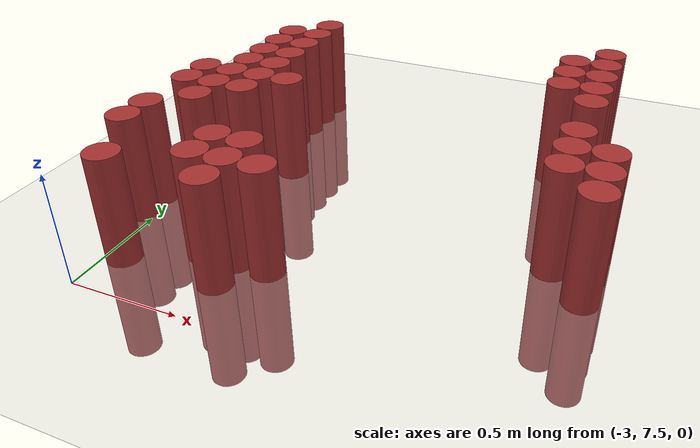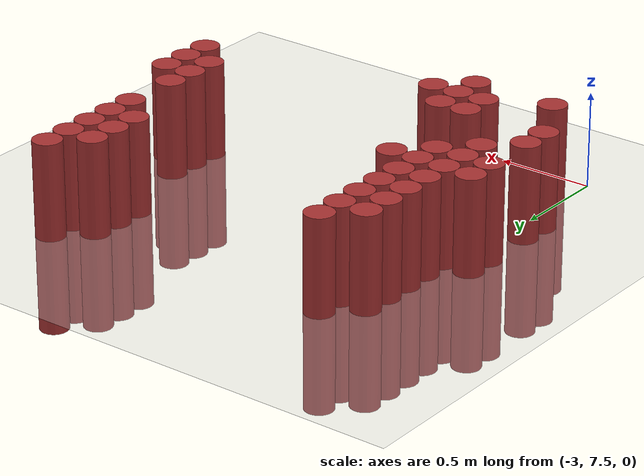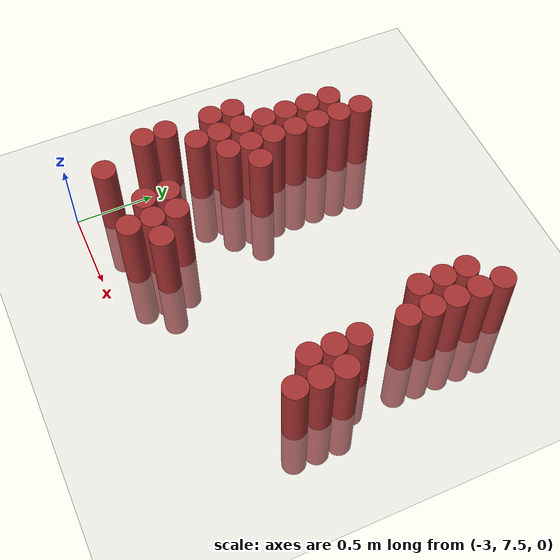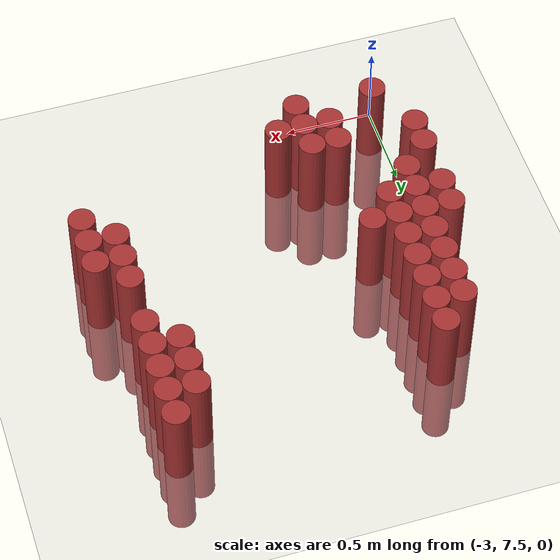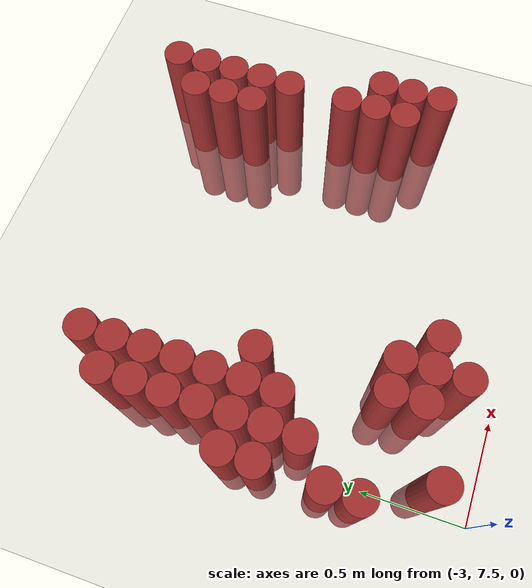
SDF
<sdf version="1.6">
 <world name="default">
  <model name="ground_plane">
   <static>1</static>
   <link name="link">
    <collision name="collision">
     <geometry><plane><normal>0 0 1</normal><size>100 100</size></plane></geometry>
     <surface><friction><ode><mu>100</mu><mu2>50</mu2></ode></friction></surface>
    </collision>
    <visual name="visual">
     <cast_shadows>0</cast_shadows>
     <geometry><plane><normal>0 0 1</normal><size>100 100</size></plane></geometry>
     <material>
      <script><uri>file://media/materials/scripts/gazebo.material</uri><name>Gazebo/Grey</name></script>
     </material>
    </visual>
   </link>
  </model>
  <model name="unit_cylinder_200">
   <static>1</static>
   <pose>-3.075000 8.025000 0.000000 0.000000 0.000000 0.000000</pose>
   <link name="link">
    <inertial>
     <mass>1</mass>
     <inertia><ixx>0.145833</ixx><ixy>0</ixy><ixz>0</ixz><iyy>0.145833</iyy><iyz>0</iyz><izz>0.125</izz></inertia>
    </inertial>
    <collision name="collision">
     <geometry><cylinder><radius>0.075000</radius><length>1</length></cylinder></geometry>
    </collision>
    <visual name="visual">
     <geometry><cylinder><radius>0.075000</radius><length>1</length></cylinder></geometry>
     <material>
      <ambient>0.648000 0.192000 0.192000 1</ambient>
      <diffuse>0.648000 0.192000 0.192000 1</diffuse>
     </material>
     <material>
      <script><name>Gazebo/Grey</name><uri>file://media/materials/scripts/gazebo.material</uri></script>
     </material>
    </visual>
    <sensor name="sensor_contact" type="contact"><contact><collision>collision</collision></contact></sensor>
   </link>
   <plugin filename="gz-sim-touchplugin-system" name="gz::sim::systems::TouchPlugin">
    <target>robot</target>
    <namespace>robot</namespace>
    <time>0.001</time>
    <enabled>true</enabled>
   </plugin>
  </model>
  <model name="unit_cylinder_201">
   <static>1</static>
   <pose>-3.075000 8.175000 0.000000 0.000000 0.000000 0.000000</pose>
   <link name="link">
    <inertial>
     <mass>1</mass>
     <inertia><ixx>0.145833</ixx><ixy>0</ixy><ixz>0</ixz><iyy>0.145833</iyy><iyz>0</iyz><izz>0.125</izz></inertia>
    </inertial>
    <collision name="collision">
     <geometry><cylinder><radius>0.075000</radius><length>1</length></cylinder></geometry>
    </collision>
    <visual name="visual">
     <geometry><cylinder><radius>0.075000</radius><length>1</length></cylinder></geometry>
     <material>
      <ambient>0.648000 0.192000 0.192000 1</ambient>
      <diffuse>0.648000 0.192000 0.192000 1</diffuse>
     </material>
     <material>
      <script><name>Gazebo/Grey</name><uri>file://media/materials/scripts/gazebo.material</uri></script>
     </material>
    </visual>
    <sensor name="sensor_contact" type="contact"><contact><collision>collision</collision></contact></sensor>
   </link>
   <plugin filename="gz-sim-touchplugin-system" name="gz::sim::systems::TouchPlugin">
    <target>robot</target>
    <namespace>robot</namespace>
    <time>0.001</time>
    <enabled>true</enabled>
   </plugin>
  </model>
  <model name="unit_cylinder_202">
   <static>1</static>
   <pose>-3.075000 8.475000 0.000000 0.000000 0.000000 0.000000</pose>
   <link name="link">
    <inertial>
     <mass>1</mass>
     <inertia><ixx>0.145833</ixx><ixy>0</ixy><ixz>0</ixz><iyy>0.145833</iyy><iyz>0</iyz><izz>0.125</izz></inertia>
    </inertial>
    <collision name="collision">
     <geometry><cylinder><radius>0.075000</radius><length>1</length></cylinder></geometry>
    </collision>
    <visual name="visual">
     <geometry><cylinder><radius>0.075000</radius><length>1</length></cylinder></geometry>
     <material>
      <ambient>0.648000 0.192000 0.192000 1</ambient>
      <diffuse>0.648000 0.192000 0.192000 1</diffuse>
     </material>
     <material>
      <script><name>Gazebo/Grey</name><uri>file://media/materials/scripts/gazebo.material</uri></script>
     </material>
    </visual>
    <sensor name="sensor_contact" type="contact"><contact><collision>collision</collision></contact></sensor>
   </link>
   <plugin filename="gz-sim-touchplugin-system" name="gz::sim::systems::TouchPlugin">
    <target>robot</target>
    <namespace>robot</namespace>
    <time>0.001</time>
    <enabled>true</enabled>
   </plugin>
  </model>
  <model name="unit_cylinder_203">
   <static>1</static>
   <pose>-3.075000 8.625000 0.000000 0.000000 0.000000 0.000000</pose>
   <link name="link">
    <inertial>
     <mass>1</mass>
     <inertia><ixx>0.145833</ixx><ixy>0</ixy><ixz>0</ixz><iyy>0.145833</iyy><iyz>0</iyz><izz>0.125</izz></inertia>
    </inertial>
    <collision name="collision">
     <geometry><cylinder><radius>0.075000</radius><length>1</length></cylinder></geometry>
    </collision>
    <visual name="visual">
     <geometry><cylinder><radius>0.075000</radius><length>1</length></cylinder></geometry>
     <material>
      <ambient>0.648000 0.192000 0.192000 1</ambient>
      <diffuse>0.648000 0.192000 0.192000 1</diffuse>
     </material>
     <material>
      <script><name>Gazebo/Grey</name><uri>file://media/materials/scripts/gazebo.material</uri></script>
     </material>
    </visual>
    <sensor name="sensor_contact" type="contact"><contact><collision>collision</collision></contact></sensor>
   </link>
   <plugin filename="gz-sim-touchplugin-system" name="gz::sim::systems::TouchPlugin">
    <target>robot</target>
    <namespace>robot</namespace>
    <time>0.001</time>
    <enabled>true</enabled>
   </plugin>
  </model>
  <model name="unit_cylinder_208">
   <static>1</static>
   <pose>-2.925000 7.725000 0.000000 0.000000 0.000000 0.000000</pose>
   <link name="link">
    <inertial>
     <mass>1</mass>
     <inertia><ixx>0.145833</ixx><ixy>0</ixy><ixz>0</ixz><iyy>0.145833</iyy><iyz>0</iyz><izz>0.125</izz></inertia>
    </inertial>
    <collision name="collision">
     <geometry><cylinder><radius>0.075000</radius><length>1</length></cylinder></geometry>
    </collision>
    <visual name="visual">
     <geometry><cylinder><radius>0.075000</radius><length>1</length></cylinder></geometry>
     <material>
      <ambient>0.648000 0.192000 0.192000 1</ambient>
      <diffuse>0.648000 0.192000 0.192000 1</diffuse>
     </material>
     <material>
      <script><name>Gazebo/Grey</name><uri>file://media/materials/scripts/gazebo.material</uri></script>
     </material>
    </visual>
    <sensor name="sensor_contact" type="contact"><contact><collision>collision</collision></contact></sensor>
   </link>
   <plugin filename="gz-sim-touchplugin-system" name="gz::sim::systems::TouchPlugin">
    <target>robot</target>
    <namespace>robot</namespace>
    <time>0.001</time>
    <enabled>true</enabled>
   </plugin>
  </model>
  <model name="unit_cylinder_209">
   <static>1</static>
   <pose>-2.925000 8.325000 0.000000 0.000000 0.000000 0.000000</pose>
   <link name="link">
    <inertial>
     <mass>1</mass>
     <inertia><ixx>0.145833</ixx><ixy>0</ixy><ixz>0</ixz><iyy>0.145833</iyy><iyz>0</iyz><izz>0.125</izz></inertia>
    </inertial>
    <collision name="collision">
     <geometry><cylinder><radius>0.075000</radius><length>1</length></cylinder></geometry>
    </collision>
    <visual name="visual">
     <geometry><cylinder><radius>0.075000</radius><length>1</length></cylinder></geometry>
     <material>
      <ambient>0.648000 0.192000 0.192000 1</ambient>
      <diffuse>0.648000 0.192000 0.192000 1</diffuse>
     </material>
     <material>
      <script><name>Gazebo/Grey</name><uri>file://media/materials/scripts/gazebo.material</uri></script>
     </material>
    </visual>
    <sensor name="sensor_contact" type="contact"><contact><collision>collision</collision></contact></sensor>
   </link>
   <plugin filename="gz-sim-touchplugin-system" name="gz::sim::systems::TouchPlugin">
    <target>robot</target>
    <namespace>robot</namespace>
    <time>0.001</time>
    <enabled>true</enabled>
   </plugin>
  </model>
  <model name="unit_cylinder_210">
   <static>1</static>
   <pose>-2.925000 8.475000 0.000000 0.000000 0.000000 0.000000</pose>
   <link name="link">
    <inertial>
     <mass>1</mass>
     <inertia><ixx>0.145833</ixx><ixy>0</ixy><ixz>0</ixz><iyy>0.145833</iyy><iyz>0</iyz><izz>0.125</izz></inertia>
    </inertial>
    <collision name="collision">
     <geometry><cylinder><radius>0.075000</radius><length>1</length></cylinder></geometry>
    </collision>
    <visual name="visual">
     <geometry><cylinder><radius>0.075000</radius><length>1</length></cylinder></geometry>
     <material>
      <ambient>0.648000 0.192000 0.192000 1</ambient>
      <diffuse>0.648000 0.192000 0.192000 1</diffuse>
     </material>
     <material>
      <script><name>Gazebo/Grey</name><uri>file://media/materials/scripts/gazebo.material</uri></script>
     </material>
    </visual>
    <sensor name="sensor_contact" type="contact"><contact><collision>collision</collision></contact></sensor>
   </link>
   <plugin filename="gz-sim-touchplugin-system" name="gz::sim::systems::TouchPlugin">
    <target>robot</target>
    <namespace>robot</namespace>
    <time>0.001</time>
    <enabled>true</enabled>
   </plugin>
  </model>
  <model name="unit_cylinder_211">
   <static>1</static>
   <pose>-2.925000 8.625000 0.000000 0.000000 0.000000 0.000000</pose>
   <link name="link">
    <inertial>
     <mass>1</mass>
     <inertia><ixx>0.145833</ixx><ixy>0</ixy><ixz>0</ixz><iyy>0.145833</iyy><iyz>0</iyz><izz>0.125</izz></inertia>
    </inertial>
    <collision name="collision">
     <geometry><cylinder><radius>0.075000</radius><length>1</length></cylinder></geometry>
    </collision>
    <visual name="visual">
     <geometry><cylinder><radius>0.075000</radius><length>1</length></cylinder></geometry>
     <material>
      <ambient>0.648000 0.192000 0.192000 1</ambient>
      <diffuse>0.648000 0.192000 0.192000 1</diffuse>
     </material>
     <material>
      <script><name>Gazebo/Grey</name><uri>file://media/materials/scripts/gazebo.material</uri></script>
     </material>
    </visual>
    <sensor name="sensor_contact" type="contact"><contact><collision>collision</collision></contact></sensor>
   </link>
   <plugin filename="gz-sim-touchplugin-system" name="gz::sim::systems::TouchPlugin">
    <target>robot</target>
    <namespace>robot</namespace>
    <time>0.001</time>
    <enabled>true</enabled>
   </plugin>
  </model>
  <model name="unit_cylinder_212">
   <static>1</static>
   <pose>-2.925000 8.775000 0.000000 0.000000 0.000000 0.000000</pose>
   <link name="link">
    <inertial>
     <mass>1</mass>
     <inertia><ixx>0.145833</ixx><ixy>0</ixy><ixz>0</ixz><iyy>0.145833</iyy><iyz>0</iyz><izz>0.125</izz></inertia>
    </inertial>
    <collision name="collision">
     <geometry><cylinder><radius>0.075000</radius><length>1</length></cylinder></geometry>
    </collision>
    <visual name="visual">
     <geometry><cylinder><radius>0.075000</radius><length>1</length></cylinder></geometry>
     <material>
      <ambient>0.648000 0.192000 0.192000 1</ambient>
      <diffuse>0.648000 0.192000 0.192000 1</diffuse>
     </material>
     <material>
      <script><name>Gazebo/Grey</name><uri>file://media/materials/scripts/gazebo.material</uri></script>
     </material>
    </visual>
    <sensor name="sensor_contact" type="contact"><contact><collision>collision</collision></contact></sensor>
   </link>
   <plugin filename="gz-sim-touchplugin-system" name="gz::sim::systems::TouchPlugin">
    <target>robot</target>
    <namespace>robot</namespace>
    <time>0.001</time>
    <enabled>true</enabled>
   </plugin>
  </model>
  <model name="unit_cylinder_213">
   <static>1</static>
   <pose>-2.925000 8.925000 0.000000 0.000000 0.000000 0.000000</pose>
   <link name="link">
    <inertial>
     <mass>1</mass>
     <inertia><ixx>0.145833</ixx><ixy>0</ixy><ixz>0</ixz><iyy>0.145833</iyy><iyz>0</iyz><izz>0.125</izz></inertia>
    </inertial>
    <collision name="collision">
     <geometry><cylinder><radius>0.075000</radius><length>1</length></cylinder></geometry>
    </collision>
    <visual name="visual">
     <geometry><cylinder><radius>0.075000</radius><length>1</length></cylinder></geometry>
     <material>
      <ambient>0.648000 0.192000 0.192000 1</ambient>
      <diffuse>0.648000 0.192000 0.192000 1</diffuse>
     </material>
     <material>
      <script><name>Gazebo/Grey</name><uri>file://media/materials/scripts/gazebo.material</uri></script>
     </material>
    </visual>
    <sensor name="sensor_contact" type="contact"><contact><collision>collision</collision></contact></sensor>
   </link>
   <plugin filename="gz-sim-touchplugin-system" name="gz::sim::systems::TouchPlugin">
    <target>robot</target>
    <namespace>robot</namespace>
    <time>0.001</time>
    <enabled>true</enabled>
   </plugin>
  </model>
  <model name="unit_cylinder_214">
   <static>1</static>
   <pose>-2.925000 9.075000 0.000000 0.000000 0.000000 0.000000</pose>
   <link name="link">
    <inertial>
     <mass>1</mass>
     <inertia><ixx>0.145833</ixx><ixy>0</ixy><ixz>0</ixz><iyy>0.145833</iyy><iyz>0</iyz><izz>0.125</izz></inertia>
    </inertial>
    <collision name="collision">
     <geometry><cylinder><radius>0.075000</radius><length>1</length></cylinder></geometry>
    </collision>
    <visual name="visual">
     <geometry><cylinder><radius>0.075000</radius><length>1</length></cylinder></geometry>
     <material>
      <ambient>0.648000 0.192000 0.192000 1</ambient>
      <diffuse>0.648000 0.192000 0.192000 1</diffuse>
     </material>
     <material>
      <script><name>Gazebo/Grey</name><uri>file://media/materials/scripts/gazebo.material</uri></script>
     </material>
    </visual>
    <sensor name="sensor_contact" type="contact"><contact><collision>collision</collision></contact></sensor>
   </link>
   <plugin filename="gz-sim-touchplugin-system" name="gz::sim::systems::TouchPlugin">
    <target>robot</target>
    <namespace>robot</namespace>
    <time>0.001</time>
    <enabled>true</enabled>
   </plugin>
  </model>
  <model name="unit_cylinder_215">
   <static>1</static>
   <pose>-2.925000 9.225000 0.000000 0.000000 0.000000 0.000000</pose>
   <link name="link">
    <inertial>
     <mass>1</mass>
     <inertia><ixx>0.145833</ixx><ixy>0</ixy><ixz>0</ixz><iyy>0.145833</iyy><iyz>0</iyz><izz>0.125</izz></inertia>
    </inertial>
    <collision name="collision">
     <geometry><cylinder><radius>0.075000</radius><length>1</length></cylinder></geometry>
    </collision>
    <visual name="visual">
     <geometry><cylinder><radius>0.075000</radius><length>1</length></cylinder></geometry>
     <material>
      <ambient>0.648000 0.192000 0.192000 1</ambient>
      <diffuse>0.648000 0.192000 0.192000 1</diffuse>
     </material>
     <material>
      <script><name>Gazebo/Grey</name><uri>file://media/materials/scripts/gazebo.material</uri></script>
     </material>
    </visual>
    <sensor name="sensor_contact" type="contact"><contact><collision>collision</collision></contact></sensor>
   </link>
   <plugin filename="gz-sim-touchplugin-system" name="gz::sim::systems::TouchPlugin">
    <target>robot</target>
    <namespace>robot</namespace>
    <time>0.001</time>
    <enabled>true</enabled>
   </plugin>
  </model>
  <model name="unit_cylinder_219">
   <static>1</static>
   <pose>-2.775000 8.475000 0.000000 0.000000 0.000000 0.000000</pose>
   <link name="link">
    <inertial>
     <mass>1</mass>
     <inertia><ixx>0.145833</ixx><ixy>0</ixy><ixz>0</ixz><iyy>0.145833</iyy><iyz>0</iyz><izz>0.125</izz></inertia>
    </inertial>
    <collision name="collision">
     <geometry><cylinder><radius>0.075000</radius><length>1</length></cylinder></geometry>
    </collision>
    <visual name="visual">
     <geometry><cylinder><radius>0.075000</radius><length>1</length></cylinder></geometry>
     <material>
      <ambient>0.648000 0.192000 0.192000 1</ambient>
      <diffuse>0.648000 0.192000 0.192000 1</diffuse>
     </material>
     <material>
      <script><name>Gazebo/Grey</name><uri>file://media/materials/scripts/gazebo.material</uri></script>
     </material>
    </visual>
    <sensor name="sensor_contact" type="contact"><contact><collision>collision</collision></contact></sensor>
   </link>
   <plugin filename="gz-sim-touchplugin-system" name="gz::sim::systems::TouchPlugin">
    <target>robot</target>
    <namespace>robot</namespace>
    <time>0.001</time>
    <enabled>true</enabled>
   </plugin>
  </model>
  <model name="unit_cylinder_220">
   <static>1</static>
   <pose>-2.775000 8.625000 0.000000 0.000000 0.000000 0.000000</pose>
   <link name="link">
    <inertial>
     <mass>1</mass>
     <inertia><ixx>0.145833</ixx><ixy>0</ixy><ixz>0</ixz><iyy>0.145833</iyy><iyz>0</iyz><izz>0.125</izz></inertia>
    </inertial>
    <collision name="collision">
     <geometry><cylinder><radius>0.075000</radius><length>1</length></cylinder></geometry>
    </collision>
    <visual name="visual">
     <geometry><cylinder><radius>0.075000</radius><length>1</length></cylinder></geometry>
     <material>
      <ambient>0.648000 0.192000 0.192000 1</ambient>
      <diffuse>0.648000 0.192000 0.192000 1</diffuse>
     </material>
     <material>
      <script><name>Gazebo/Grey</name><uri>file://media/materials/scripts/gazebo.material</uri></script>
     </material>
    </visual>
    <sensor name="sensor_contact" type="contact"><contact><collision>collision</collision></contact></sensor>
   </link>
   <plugin filename="gz-sim-touchplugin-system" name="gz::sim::systems::TouchPlugin">
    <target>robot</target>
    <namespace>robot</namespace>
    <time>0.001</time>
    <enabled>true</enabled>
   </plugin>
  </model>
  <model name="unit_cylinder_221">
   <static>1</static>
   <pose>-2.775000 8.775000 0.000000 0.000000 0.000000 0.000000</pose>
   <link name="link">
    <inertial>
     <mass>1</mass>
     <inertia><ixx>0.145833</ixx><ixy>0</ixy><ixz>0</ixz><iyy>0.145833</iyy><iyz>0</iyz><izz>0.125</izz></inertia>
    </inertial>
    <collision name="collision">
     <geometry><cylinder><radius>0.075000</radius><length>1</length></cylinder></geometry>
    </collision>
    <visual name="visual">
     <geometry><cylinder><radius>0.075000</radius><length>1</length></cylinder></geometry>
     <material>
      <ambient>0.648000 0.192000 0.192000 1</ambient>
      <diffuse>0.648000 0.192000 0.192000 1</diffuse>
     </material>
     <material>
      <script><name>Gazebo/Grey</name><uri>file://media/materials/scripts/gazebo.material</uri></script>
     </material>
    </visual>
    <sensor name="sensor_contact" type="contact"><contact><collision>collision</collision></contact></sensor>
   </link>
   <plugin filename="gz-sim-touchplugin-system" name="gz::sim::systems::TouchPlugin">
    <target>robot</target>
    <namespace>robot</namespace>
    <time>0.001</time>
    <enabled>true</enabled>
   </plugin>
  </model>
  <model name="unit_cylinder_222">
   <static>1</static>
   <pose>-2.775000 8.925000 0.000000 0.000000 0.000000 0.000000</pose>
   <link name="link">
    <inertial>
     <mass>1</mass>
     <inertia><ixx>0.145833</ixx><ixy>0</ixy><ixz>0</ixz><iyy>0.145833</iyy><iyz>0</iyz><izz>0.125</izz></inertia>
    </inertial>
    <collision name="collision">
     <geometry><cylinder><radius>0.075000</radius><length>1</length></cylinder></geometry>
    </collision>
    <visual name="visual">
     <geometry><cylinder><radius>0.075000</radius><length>1</length></cylinder></geometry>
     <material>
      <ambient>0.648000 0.192000 0.192000 1</ambient>
      <diffuse>0.648000 0.192000 0.192000 1</diffuse>
     </material>
     <material>
      <script><name>Gazebo/Grey</name><uri>file://media/materials/scripts/gazebo.material</uri></script>
     </material>
    </visual>
    <sensor name="sensor_contact" type="contact"><contact><collision>collision</collision></contact></sensor>
   </link>
   <plugin filename="gz-sim-touchplugin-system" name="gz::sim::systems::TouchPlugin">
    <target>robot</target>
    <namespace>robot</namespace>
    <time>0.001</time>
    <enabled>true</enabled>
   </plugin>
  </model>
  <model name="unit_cylinder_223">
   <static>1</static>
   <pose>-2.775000 9.075000 0.000000 0.000000 0.000000 0.000000</pose>
   <link name="link">
    <inertial>
     <mass>1</mass>
     <inertia><ixx>0.145833</ixx><ixy>0</ixy><ixz>0</ixz><iyy>0.145833</iyy><iyz>0</iyz><izz>0.125</izz></inertia>
    </inertial>
    <collision name="collision">
     <geometry><cylinder><radius>0.075000</radius><length>1</length></cylinder></geometry>
    </collision>
    <visual name="visual">
     <geometry><cylinder><radius>0.075000</radius><length>1</length></cylinder></geometry>
     <material>
      <ambient>0.648000 0.192000 0.192000 1</ambient>
      <diffuse>0.648000 0.192000 0.192000 1</diffuse>
     </material>
     <material>
      <script><name>Gazebo/Grey</name><uri>file://media/materials/scripts/gazebo.material</uri></script>
     </material>
    </visual>
    <sensor name="sensor_contact" type="contact"><contact><collision>collision</collision></contact></sensor>
   </link>
   <plugin filename="gz-sim-touchplugin-system" name="gz::sim::systems::TouchPlugin">
    <target>robot</target>
    <namespace>robot</namespace>
    <time>0.001</time>
    <enabled>true</enabled>
   </plugin>
  </model>
  <model name="unit_cylinder_224">
   <static>1</static>
   <pose>-2.775000 9.225000 0.000000 0.000000 0.000000 0.000000</pose>
   <link name="link">
    <inertial>
     <mass>1</mass>
     <inertia><ixx>0.145833</ixx><ixy>0</ixy><ixz>0</ixz><iyy>0.145833</iyy><iyz>0</iyz><izz>0.125</izz></inertia>
    </inertial>
    <collision name="collision">
     <geometry><cylinder><radius>0.075000</radius><length>1</length></cylinder></geometry>
    </collision>
    <visual name="visual">
     <geometry><cylinder><radius>0.075000</radius><length>1</length></cylinder></geometry>
     <material>
      <ambient>0.648000 0.192000 0.192000 1</ambient>
      <diffuse>0.648000 0.192000 0.192000 1</diffuse>
     </material>
     <material>
      <script><name>Gazebo/Grey</name><uri>file://media/materials/scripts/gazebo.material</uri></script>
     </material>
    </visual>
    <sensor name="sensor_contact" type="contact"><contact><collision>collision</collision></contact></sensor>
   </link>
   <plugin filename="gz-sim-touchplugin-system" name="gz::sim::systems::TouchPlugin">
    <target>robot</target>
    <namespace>robot</namespace>
    <time>0.001</time>
    <enabled>true</enabled>
   </plugin>
  </model>
  <model name="unit_cylinder_225">
   <static>1</static>
   <pose>-2.775000 9.375000 0.000000 0.000000 0.000000 0.000000</pose>
   <link name="link">
    <inertial>
     <mass>1</mass>
     <inertia><ixx>0.145833</ixx><ixy>0</ixy><ixz>0</ixz><iyy>0.145833</iyy><iyz>0</iyz><izz>0.125</izz></inertia>
    </inertial>
    <collision name="collision">
     <geometry><cylinder><radius>0.075000</radius><length>1</length></cylinder></geometry>
    </collision>
    <visual name="visual">
     <geometry><cylinder><radius>0.075000</radius><length>1</length></cylinder></geometry>
     <material>
      <ambient>0.648000 0.192000 0.192000 1</ambient>
      <diffuse>0.648000 0.192000 0.192000 1</diffuse>
     </material>
     <material>
      <script><name>Gazebo/Grey</name><uri>file://media/materials/scripts/gazebo.material</uri></script>
     </material>
    </visual>
    <sensor name="sensor_contact" type="contact"><contact><collision>collision</collision></contact></sensor>
   </link>
   <plugin filename="gz-sim-touchplugin-system" name="gz::sim::systems::TouchPlugin">
    <target>robot</target>
    <namespace>robot</namespace>
    <time>0.001</time>
    <enabled>true</enabled>
   </plugin>
  </model>
  <model name="unit_cylinder_229">
   <static>1</static>
   <pose>-2.625000 7.875000 0.000000 0.000000 0.000000 0.000000</pose>
   <link name="link">
    <inertial>
     <mass>1</mass>
     <inertia><ixx>0.145833</ixx><ixy>0</ixy><ixz>0</ixz><iyy>0.145833</iyy><iyz>0</iyz><izz>0.125</izz></inertia>
    </inertial>
    <collision name="collision">
     <geometry><cylinder><radius>0.075000</radius><length>1</length></cylinder></geometry>
    </collision>
    <visual name="visual">
     <geometry><cylinder><radius>0.075000</radius><length>1</length></cylinder></geometry>
     <material>
      <ambient>0.648000 0.192000 0.192000 1</ambient>
      <diffuse>0.648000 0.192000 0.192000 1</diffuse>
     </material>
     <material>
      <script><name>Gazebo/Grey</name><uri>file://media/materials/scripts/gazebo.material</uri></script>
     </material>
    </visual>
    <sensor name="sensor_contact" type="contact"><contact><collision>collision</collision></contact></sensor>
   </link>
   <plugin filename="gz-sim-touchplugin-system" name="gz::sim::systems::TouchPlugin">
    <target>robot</target>
    <namespace>robot</namespace>
    <time>0.001</time>
    <enabled>true</enabled>
   </plugin>
  </model>
  <model name="unit_cylinder_230">
   <static>1</static>
   <pose>-2.625000 8.025000 0.000000 0.000000 0.000000 0.000000</pose>
   <link name="link">
    <inertial>
     <mass>1</mass>
     <inertia><ixx>0.145833</ixx><ixy>0</ixy><ixz>0</ixz><iyy>0.145833</iyy><iyz>0</iyz><izz>0.125</izz></inertia>
    </inertial>
    <collision name="collision">
     <geometry><cylinder><radius>0.075000</radius><length>1</length></cylinder></geometry>
    </collision>
    <visual name="visual">
     <geometry><cylinder><radius>0.075000</radius><length>1</length></cylinder></geometry>
     <material>
      <ambient>0.648000 0.192000 0.192000 1</ambient>
      <diffuse>0.648000 0.192000 0.192000 1</diffuse>
     </material>
     <material>
      <script><name>Gazebo/Grey</name><uri>file://media/materials/scripts/gazebo.material</uri></script>
     </material>
    </visual>
    <sensor name="sensor_contact" type="contact"><contact><collision>collision</collision></contact></sensor>
   </link>
   <plugin filename="gz-sim-touchplugin-system" name="gz::sim::systems::TouchPlugin">
    <target>robot</target>
    <namespace>robot</namespace>
    <time>0.001</time>
    <enabled>true</enabled>
   </plugin>
  </model>
  <model name="unit_cylinder_231">
   <static>1</static>
   <pose>-2.625000 8.625000 0.000000 0.000000 0.000000 0.000000</pose>
   <link name="link">
    <inertial>
     <mass>1</mass>
     <inertia><ixx>0.145833</ixx><ixy>0</ixy><ixz>0</ixz><iyy>0.145833</iyy><iyz>0</iyz><izz>0.125</izz></inertia>
    </inertial>
    <collision name="collision">
     <geometry><cylinder><radius>0.075000</radius><length>1</length></cylinder></geometry>
    </collision>
    <visual name="visual">
     <geometry><cylinder><radius>0.075000</radius><length>1</length></cylinder></geometry>
     <material>
      <ambient>0.648000 0.192000 0.192000 1</ambient>
      <diffuse>0.648000 0.192000 0.192000 1</diffuse>
     </material>
     <material>
      <script><name>Gazebo/Grey</name><uri>file://media/materials/scripts/gazebo.material</uri></script>
     </material>
    </visual>
    <sensor name="sensor_contact" type="contact"><contact><collision>collision</collision></contact></sensor>
   </link>
   <plugin filename="gz-sim-touchplugin-system" name="gz::sim::systems::TouchPlugin">
    <target>robot</target>
    <namespace>robot</namespace>
    <time>0.001</time>
    <enabled>true</enabled>
   </plugin>
  </model>
  <model name="unit_cylinder_236">
   <static>1</static>
   <pose>-2.475000 7.725000 0.000000 0.000000 0.000000 0.000000</pose>
   <link name="link">
    <inertial>
     <mass>1</mass>
     <inertia><ixx>0.145833</ixx><ixy>0</ixy><ixz>0</ixz><iyy>0.145833</iyy><iyz>0</iyz><izz>0.125</izz></inertia>
    </inertial>
    <collision name="collision">
     <geometry><cylinder><radius>0.075000</radius><length>1</length></cylinder></geometry>
    </collision>
    <visual name="visual">
     <geometry><cylinder><radius>0.075000</radius><length>1</length></cylinder></geometry>
     <material>
      <ambient>0.648000 0.192000 0.192000 1</ambient>
      <diffuse>0.648000 0.192000 0.192000 1</diffuse>
     </material>
     <material>
      <script><name>Gazebo/Grey</name><uri>file://media/materials/scripts/gazebo.material</uri></script>
     </material>
    </visual>
    <sensor name="sensor_contact" type="contact"><contact><collision>collision</collision></contact></sensor>
   </link>
   <plugin filename="gz-sim-touchplugin-system" name="gz::sim::systems::TouchPlugin">
    <target>robot</target>
    <namespace>robot</namespace>
    <time>0.001</time>
    <enabled>true</enabled>
   </plugin>
  </model>
  <model name="unit_cylinder_237">
   <static>1</static>
   <pose>-2.475000 7.875000 0.000000 0.000000 0.000000 0.000000</pose>
   <link name="link">
    <inertial>
     <mass>1</mass>
     <inertia><ixx>0.145833</ixx><ixy>0</ixy><ixz>0</ixz><iyy>0.145833</iyy><iyz>0</iyz><izz>0.125</izz></inertia>
    </inertial>
    <collision name="collision">
     <geometry><cylinder><radius>0.075000</radius><length>1</length></cylinder></geometry>
    </collision>
    <visual name="visual">
     <geometry><cylinder><radius>0.075000</radius><length>1</length></cylinder></geometry>
     <material>
      <ambient>0.648000 0.192000 0.192000 1</ambient>
      <diffuse>0.648000 0.192000 0.192000 1</diffuse>
     </material>
     <material>
      <script><name>Gazebo/Grey</name><uri>file://media/materials/scripts/gazebo.material</uri></script>
     </material>
    </visual>
    <sensor name="sensor_contact" type="contact"><contact><collision>collision</collision></contact></sensor>
   </link>
   <plugin filename="gz-sim-touchplugin-system" name="gz::sim::systems::TouchPlugin">
    <target>robot</target>
    <namespace>robot</namespace>
    <time>0.001</time>
    <enabled>true</enabled>
   </plugin>
  </model>
  <model name="unit_cylinder_238">
   <static>1</static>
   <pose>-2.475000 8.025000 0.000000 0.000000 0.000000 0.000000</pose>
   <link name="link">
    <inertial>
     <mass>1</mass>
     <inertia><ixx>0.145833</ixx><ixy>0</ixy><ixz>0</ixz><iyy>0.145833</iyy><iyz>0</iyz><izz>0.125</izz></inertia>
    </inertial>
    <collision name="collision">
     <geometry><cylinder><radius>0.075000</radius><length>1</length></cylinder></geometry>
    </collision>
    <visual name="visual">
     <geometry><cylinder><radius>0.075000</radius><length>1</length></cylinder></geometry>
     <material>
      <ambient>0.648000 0.192000 0.192000 1</ambient>
      <diffuse>0.648000 0.192000 0.192000 1</diffuse>
     </material>
     <material>
      <script><name>Gazebo/Grey</name><uri>file://media/materials/scripts/gazebo.material</uri></script>
     </material>
    </visual>
    <sensor name="sensor_contact" type="contact"><contact><collision>collision</collision></contact></sensor>
   </link>
   <plugin filename="gz-sim-touchplugin-system" name="gz::sim::systems::TouchPlugin">
    <target>robot</target>
    <namespace>robot</namespace>
    <time>0.001</time>
    <enabled>true</enabled>
   </plugin>
  </model>
  <model name="unit_cylinder_242">
   <static>1</static>
   <pose>-2.325000 7.875000 0.000000 0.000000 0.000000 0.000000</pose>
   <link name="link">
    <inertial>
     <mass>1</mass>
     <inertia><ixx>0.145833</ixx><ixy>0</ixy><ixz>0</ixz><iyy>0.145833</iyy><iyz>0</iyz><izz>0.125</izz></inertia>
    </inertial>
    <collision name="collision">
     <geometry><cylinder><radius>0.075000</radius><length>1</length></cylinder></geometry>
    </collision>
    <visual name="visual">
     <geometry><cylinder><radius>0.075000</radius><length>1</length></cylinder></geometry>
     <material>
      <ambient>0.648000 0.192000 0.192000 1</ambient>
      <diffuse>0.648000 0.192000 0.192000 1</diffuse>
     </material>
     <material>
      <script><name>Gazebo/Grey</name><uri>file://media/materials/scripts/gazebo.material</uri></script>
     </material>
    </visual>
    <sensor name="sensor_contact" type="contact"><contact><collision>collision</collision></contact></sensor>
   </link>
   <plugin filename="gz-sim-touchplugin-system" name="gz::sim::systems::TouchPlugin">
    <target>robot</target>
    <namespace>robot</namespace>
    <time>0.001</time>
    <enabled>true</enabled>
   </plugin>
  </model>
  <model name="unit_cylinder_245">
   <static>1</static>
   <pose>-1.425000 9.075000 0.000000 0.000000 0.000000 0.000000</pose>
   <link name="link">
    <inertial>
     <mass>1</mass>
     <inertia><ixx>0.145833</ixx><ixy>0</ixy><ixz>0</ixz><iyy>0.145833</iyy><iyz>0</iyz><izz>0.125</izz></inertia>
    </inertial>
    <collision name="collision">
     <geometry><cylinder><radius>0.075000</radius><length>1</length></cylinder></geometry>
    </collision>
    <visual name="visual">
     <geometry><cylinder><radius>0.075000</radius><length>1</length></cylinder></geometry>
     <material>
      <ambient>0.648000 0.192000 0.192000 1</ambient>
      <diffuse>0.648000 0.192000 0.192000 1</diffuse>
     </material>
     <material>
      <script><name>Gazebo/Grey</name><uri>file://media/materials/scripts/gazebo.material</uri></script>
     </material>
    </visual>
    <sensor name="sensor_contact" type="contact"><contact><collision>collision</collision></contact></sensor>
   </link>
   <plugin filename="gz-sim-touchplugin-system" name="gz::sim::systems::TouchPlugin">
    <target>robot</target>
    <namespace>robot</namespace>
    <time>0.001</time>
    <enabled>true</enabled>
   </plugin>
  </model>
  <model name="unit_cylinder_246">
   <static>1</static>
   <pose>-1.425000 9.225000 0.000000 0.000000 0.000000 0.000000</pose>
   <link name="link">
    <inertial>
     <mass>1</mass>
     <inertia><ixx>0.145833</ixx><ixy>0</ixy><ixz>0</ixz><iyy>0.145833</iyy><iyz>0</iyz><izz>0.125</izz></inertia>
    </inertial>
    <collision name="collision">
     <geometry><cylinder><radius>0.075000</radius><length>1</length></cylinder></geometry>
    </collision>
    <visual name="visual">
     <geometry><cylinder><radius>0.075000</radius><length>1</length></cylinder></geometry>
     <material>
      <ambient>0.648000 0.192000 0.192000 1</ambient>
      <diffuse>0.648000 0.192000 0.192000 1</diffuse>
     </material>
     <material>
      <script><name>Gazebo/Grey</name><uri>file://media/materials/scripts/gazebo.material</uri></script>
     </material>
    </visual>
    <sensor name="sensor_contact" type="contact"><contact><collision>collision</collision></contact></sensor>
   </link>
   <plugin filename="gz-sim-touchplugin-system" name="gz::sim::systems::TouchPlugin">
    <target>robot</target>
    <namespace>robot</namespace>
    <time>0.001</time>
    <enabled>true</enabled>
   </plugin>
  </model>
  <model name="unit_cylinder_247">
   <static>1</static>
   <pose>-1.425000 9.375000 0.000000 0.000000 0.000000 0.000000</pose>
   <link name="link">
    <inertial>
     <mass>1</mass>
     <inertia><ixx>0.145833</ixx><ixy>0</ixy><ixz>0</ixz><iyy>0.145833</iyy><iyz>0</iyz><izz>0.125</izz></inertia>
    </inertial>
    <collision name="collision">
     <geometry><cylinder><radius>0.075000</radius><length>1</length></cylinder></geometry>
    </collision>
    <visual name="visual">
     <geometry><cylinder><radius>0.075000</radius><length>1</length></cylinder></geometry>
     <material>
      <ambient>0.648000 0.192000 0.192000 1</ambient>
      <diffuse>0.648000 0.192000 0.192000 1</diffuse>
     </material>
     <material>
      <script><name>Gazebo/Grey</name><uri>file://media/materials/scripts/gazebo.material</uri></script>
     </material>
    </visual>
    <sensor name="sensor_contact" type="contact"><contact><collision>collision</collision></contact></sensor>
   </link>
   <plugin filename="gz-sim-touchplugin-system" name="gz::sim::systems::TouchPlugin">
    <target>robot</target>
    <namespace>robot</namespace>
    <time>0.001</time>
    <enabled>true</enabled>
   </plugin>
  </model>
  <model name="unit_cylinder_252">
   <static>1</static>
   <pose>-1.275000 8.325000 0.000000 0.000000 0.000000 0.000000</pose>
   <link name="link">
    <inertial>
     <mass>1</mass>
     <inertia><ixx>0.145833</ixx><ixy>0</ixy><ixz>0</ixz><iyy>0.145833</iyy><iyz>0</iyz><izz>0.125</izz></inertia>
    </inertial>
    <collision name="collision">
     <geometry><cylinder><radius>0.075000</radius><length>1</length></cylinder></geometry>
    </collision>
    <visual name="visual">
     <geometry><cylinder><radius>0.075000</radius><length>1</length></cylinder></geometry>
     <material>
      <ambient>0.648000 0.192000 0.192000 1</ambient>
      <diffuse>0.648000 0.192000 0.192000 1</diffuse>
     </material>
     <material>
      <script><name>Gazebo/Grey</name><uri>file://media/materials/scripts/gazebo.material</uri></script>
     </material>
    </visual>
    <sensor name="sensor_contact" type="contact"><contact><collision>collision</collision></contact></sensor>
   </link>
   <plugin filename="gz-sim-touchplugin-system" name="gz::sim::systems::TouchPlugin">
    <target>robot</target>
    <namespace>robot</namespace>
    <time>0.001</time>
    <enabled>true</enabled>
   </plugin>
  </model>
  <model name="unit_cylinder_253">
   <static>1</static>
   <pose>-1.275000 8.475000 0.000000 0.000000 0.000000 0.000000</pose>
   <link name="link">
    <inertial>
     <mass>1</mass>
     <inertia><ixx>0.145833</ixx><ixy>0</ixy><ixz>0</ixz><iyy>0.145833</iyy><iyz>0</iyz><izz>0.125</izz></inertia>
    </inertial>
    <collision name="collision">
     <geometry><cylinder><radius>0.075000</radius><length>1</length></cylinder></geometry>
    </collision>
    <visual name="visual">
     <geometry><cylinder><radius>0.075000</radius><length>1</length></cylinder></geometry>
     <material>
      <ambient>0.648000 0.192000 0.192000 1</ambient>
      <diffuse>0.648000 0.192000 0.192000 1</diffuse>
     </material>
     <material>
      <script><name>Gazebo/Grey</name><uri>file://media/materials/scripts/gazebo.material</uri></script>
     </material>
    </visual>
    <sensor name="sensor_contact" type="contact"><contact><collision>collision</collision></contact></sensor>
   </link>
   <plugin filename="gz-sim-touchplugin-system" name="gz::sim::systems::TouchPlugin">
    <target>robot</target>
    <namespace>robot</namespace>
    <time>0.001</time>
    <enabled>true</enabled>
   </plugin>
  </model>
  <model name="unit_cylinder_254">
   <static>1</static>
   <pose>-1.275000 8.625000 0.000000 0.000000 0.000000 0.000000</pose>
   <link name="link">
    <inertial>
     <mass>1</mass>
     <inertia><ixx>0.145833</ixx><ixy>0</ixy><ixz>0</ixz><iyy>0.145833</iyy><iyz>0</iyz><izz>0.125</izz></inertia>
    </inertial>
    <collision name="collision">
     <geometry><cylinder><radius>0.075000</radius><length>1</length></cylinder></geometry>
    </collision>
    <visual name="visual">
     <geometry><cylinder><radius>0.075000</radius><length>1</length></cylinder></geometry>
     <material>
      <ambient>0.648000 0.192000 0.192000 1</ambient>
      <diffuse>0.648000 0.192000 0.192000 1</diffuse>
     </material>
     <material>
      <script><name>Gazebo/Grey</name><uri>file://media/materials/scripts/gazebo.material</uri></script>
     </material>
    </visual>
    <sensor name="sensor_contact" type="contact"><contact><collision>collision</collision></contact></sensor>
   </link>
   <plugin filename="gz-sim-touchplugin-system" name="gz::sim::systems::TouchPlugin">
    <target>robot</target>
    <namespace>robot</namespace>
    <time>0.001</time>
    <enabled>true</enabled>
   </plugin>
  </model>
  <model name="unit_cylinder_255">
   <static>1</static>
   <pose>-1.275000 8.925000 0.000000 0.000000 0.000000 0.000000</pose>
   <link name="link">
    <inertial>
     <mass>1</mass>
     <inertia><ixx>0.145833</ixx><ixy>0</ixy><ixz>0</ixz><iyy>0.145833</iyy><iyz>0</iyz><izz>0.125</izz></inertia>
    </inertial>
    <collision name="collision">
     <geometry><cylinder><radius>0.075000</radius><length>1</length></cylinder></geometry>
    </collision>
    <visual name="visual">
     <geometry><cylinder><radius>0.075000</radius><length>1</length></cylinder></geometry>
     <material>
      <ambient>0.648000 0.192000 0.192000 1</ambient>
      <diffuse>0.648000 0.192000 0.192000 1</diffuse>
     </material>
     <material>
      <script><name>Gazebo/Grey</name><uri>file://media/materials/scripts/gazebo.material</uri></script>
     </material>
    </visual>
    <sensor name="sensor_contact" type="contact"><contact><collision>collision</collision></contact></sensor>
   </link>
   <plugin filename="gz-sim-touchplugin-system" name="gz::sim::systems::TouchPlugin">
    <target>robot</target>
    <namespace>robot</namespace>
    <time>0.001</time>
    <enabled>true</enabled>
   </plugin>
  </model>
  <model name="unit_cylinder_256">
   <static>1</static>
   <pose>-1.275000 9.075000 0.000000 0.000000 0.000000 0.000000</pose>
   <link name="link">
    <inertial>
     <mass>1</mass>
     <inertia><ixx>0.145833</ixx><ixy>0</ixy><ixz>0</ixz><iyy>0.145833</iyy><iyz>0</iyz><izz>0.125</izz></inertia>
    </inertial>
    <collision name="collision">
     <geometry><cylinder><radius>0.075000</radius><length>1</length></cylinder></geometry>
    </collision>
    <visual name="visual">
     <geometry><cylinder><radius>0.075000</radius><length>1</length></cylinder></geometry>
     <material>
      <ambient>0.648000 0.192000 0.192000 1</ambient>
      <diffuse>0.648000 0.192000 0.192000 1</diffuse>
     </material>
     <material>
      <script><name>Gazebo/Grey</name><uri>file://media/materials/scripts/gazebo.material</uri></script>
     </material>
    </visual>
    <sensor name="sensor_contact" type="contact"><contact><collision>collision</collision></contact></sensor>
   </link>
   <plugin filename="gz-sim-touchplugin-system" name="gz::sim::systems::TouchPlugin">
    <target>robot</target>
    <namespace>robot</namespace>
    <time>0.001</time>
    <enabled>true</enabled>
   </plugin>
  </model>
  <model name="unit_cylinder_257">
   <static>1</static>
   <pose>-1.275000 9.225000 0.000000 0.000000 0.000000 0.000000</pose>
   <link name="link">
    <inertial>
     <mass>1</mass>
     <inertia><ixx>0.145833</ixx><ixy>0</ixy><ixz>0</ixz><iyy>0.145833</iyy><iyz>0</iyz><izz>0.125</izz></inertia>
    </inertial>
    <collision name="collision">
     <geometry><cylinder><radius>0.075000</radius><length>1</length></cylinder></geometry>
    </collision>
    <visual name="visual">
     <geometry><cylinder><radius>0.075000</radius><length>1</length></cylinder></geometry>
     <material>
      <ambient>0.648000 0.192000 0.192000 1</ambient>
      <diffuse>0.648000 0.192000 0.192000 1</diffuse>
     </material>
     <material>
      <script><name>Gazebo/Grey</name><uri>file://media/materials/scripts/gazebo.material</uri></script>
     </material>
    </visual>
    <sensor name="sensor_contact" type="contact"><contact><collision>collision</collision></contact></sensor>
   </link>
   <plugin filename="gz-sim-touchplugin-system" name="gz::sim::systems::TouchPlugin">
    <target>robot</target>
    <namespace>robot</namespace>
    <time>0.001</time>
    <enabled>true</enabled>
   </plugin>
  </model>
  <model name="unit_cylinder_258">
   <static>1</static>
   <pose>-1.275000 9.375000 0.000000 0.000000 0.000000 0.000000</pose>
   <link name="link">
    <inertial>
     <mass>1</mass>
     <inertia><ixx>0.145833</ixx><ixy>0</ixy><ixz>0</ixz><iyy>0.145833</iyy><iyz>0</iyz><izz>0.125</izz></inertia>
    </inertial>
    <collision name="collision">
     <geometry><cylinder><radius>0.075000</radius><length>1</length></cylinder></geometry>
    </collision>
    <visual name="visual">
     <geometry><cylinder><radius>0.075000</radius><length>1</length></cylinder></geometry>
     <material>
      <ambient>0.648000 0.192000 0.192000 1</ambient>
      <diffuse>0.648000 0.192000 0.192000 1</diffuse>
     </material>
     <material>
      <script><name>Gazebo/Grey</name><uri>file://media/materials/scripts/gazebo.material</uri></script>
     </material>
    </visual>
    <sensor name="sensor_contact" type="contact"><contact><collision>collision</collision></contact></sensor>
   </link>
   <plugin filename="gz-sim-touchplugin-system" name="gz::sim::systems::TouchPlugin">
    <target>robot</target>
    <namespace>robot</namespace>
    <time>0.001</time>
    <enabled>true</enabled>
   </plugin>
  </model>
  <model name="unit_cylinder_259">
   <static>1</static>
   <pose>-1.275000 9.525000 0.000000 0.000000 0.000000 0.000000</pose>
   <link name="link">
    <inertial>
     <mass>1</mass>
     <inertia><ixx>0.145833</ixx><ixy>0</ixy><ixz>0</ixz><iyy>0.145833</iyy><iyz>0</iyz><izz>0.125</izz></inertia>
    </inertial>
    <collision name="collision">
     <geometry><cylinder><radius>0.075000</radius><length>1</length></cylinder></geometry>
    </collision>
    <visual name="visual">
     <geometry><cylinder><radius>0.075000</radius><length>1</length></cylinder></geometry>
     <material>
      <ambient>0.648000 0.192000 0.192000 1</ambient>
      <diffuse>0.648000 0.192000 0.192000 1</diffuse>
     </material>
     <material>
      <script><name>Gazebo/Grey</name><uri>file://media/materials/scripts/gazebo.material</uri></script>
     </material>
    </visual>
    <sensor name="sensor_contact" type="contact"><contact><collision>collision</collision></contact></sensor>
   </link>
   <plugin filename="gz-sim-touchplugin-system" name="gz::sim::systems::TouchPlugin">
    <target>robot</target>
    <namespace>robot</namespace>
    <time>0.001</time>
    <enabled>true</enabled>
   </plugin>
  </model>
  <model name="unit_cylinder_263">
   <static>1</static>
   <pose>-1.125000 8.175000 0.000000 0.000000 0.000000 0.000000</pose>
   <link name="link">
    <inertial>
     <mass>1</mass>
     <inertia><ixx>0.145833</ixx><ixy>0</ixy><ixz>0</ixz><iyy>0.145833</iyy><iyz>0</iyz><izz>0.125</izz></inertia>
    </inertial>
    <collision name="collision">
     <geometry><cylinder><radius>0.075000</radius><length>1</length></cylinder></geometry>
    </collision>
    <visual name="visual">
     <geometry><cylinder><radius>0.075000</radius><length>1</length></cylinder></geometry>
     <material>
      <ambient>0.648000 0.192000 0.192000 1</ambient>
      <diffuse>0.648000 0.192000 0.192000 1</diffuse>
     </material>
     <material>
      <script><name>Gazebo/Grey</name><uri>file://media/materials/scripts/gazebo.material</uri></script>
     </material>
    </visual>
    <sensor name="sensor_contact" type="contact"><contact><collision>collision</collision></contact></sensor>
   </link>
   <plugin filename="gz-sim-touchplugin-system" name="gz::sim::systems::TouchPlugin">
    <target>robot</target>
    <namespace>robot</namespace>
    <time>0.001</time>
    <enabled>true</enabled>
   </plugin>
  </model>
  <model name="unit_cylinder_264">
   <static>1</static>
   <pose>-1.125000 8.325000 0.000000 0.000000 0.000000 0.000000</pose>
   <link name="link">
    <inertial>
     <mass>1</mass>
     <inertia><ixx>0.145833</ixx><ixy>0</ixy><ixz>0</ixz><iyy>0.145833</iyy><iyz>0</iyz><izz>0.125</izz></inertia>
    </inertial>
    <collision name="collision">
     <geometry><cylinder><radius>0.075000</radius><length>1</length></cylinder></geometry>
    </collision>
    <visual name="visual">
     <geometry><cylinder><radius>0.075000</radius><length>1</length></cylinder></geometry>
     <material>
      <ambient>0.648000 0.192000 0.192000 1</ambient>
      <diffuse>0.648000 0.192000 0.192000 1</diffuse>
     </material>
     <material>
      <script><name>Gazebo/Grey</name><uri>file://media/materials/scripts/gazebo.material</uri></script>
     </material>
    </visual>
    <sensor name="sensor_contact" type="contact"><contact><collision>collision</collision></contact></sensor>
   </link>
   <plugin filename="gz-sim-touchplugin-system" name="gz::sim::systems::TouchPlugin">
    <target>robot</target>
    <namespace>robot</namespace>
    <time>0.001</time>
    <enabled>true</enabled>
   </plugin>
  </model>
  <model name="unit_cylinder_265">
   <static>1</static>
   <pose>-1.125000 8.475000 0.000000 0.000000 0.000000 0.000000</pose>
   <link name="link">
    <inertial>
     <mass>1</mass>
     <inertia><ixx>0.145833</ixx><ixy>0</ixy><ixz>0</ixz><iyy>0.145833</iyy><iyz>0</iyz><izz>0.125</izz></inertia>
    </inertial>
    <collision name="collision">
     <geometry><cylinder><radius>0.075000</radius><length>1</length></cylinder></geometry>
    </collision>
    <visual name="visual">
     <geometry><cylinder><radius>0.075000</radius><length>1</length></cylinder></geometry>
     <material>
      <ambient>0.648000 0.192000 0.192000 1</ambient>
      <diffuse>0.648000 0.192000 0.192000 1</diffuse>
     </material>
     <material>
      <script><name>Gazebo/Grey</name><uri>file://media/materials/scripts/gazebo.material</uri></script>
     </material>
    </visual>
    <sensor name="sensor_contact" type="contact"><contact><collision>collision</collision></contact></sensor>
   </link>
   <plugin filename="gz-sim-touchplugin-system" name="gz::sim::systems::TouchPlugin">
    <target>robot</target>
    <namespace>robot</namespace>
    <time>0.001</time>
    <enabled>true</enabled>
   </plugin>
  </model>
 </world>
</sdf>
